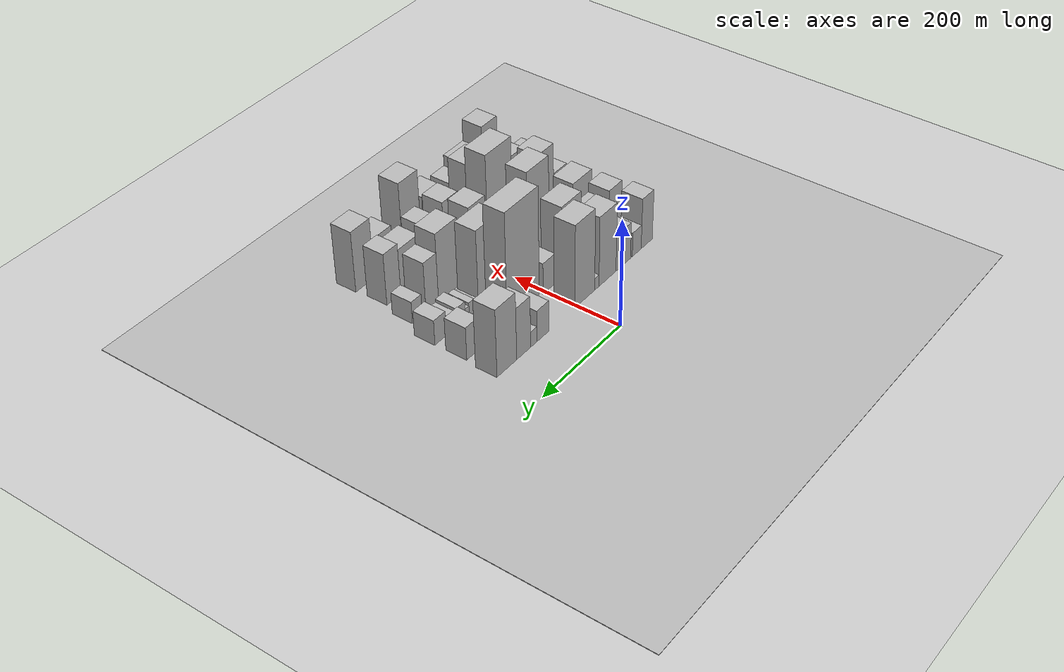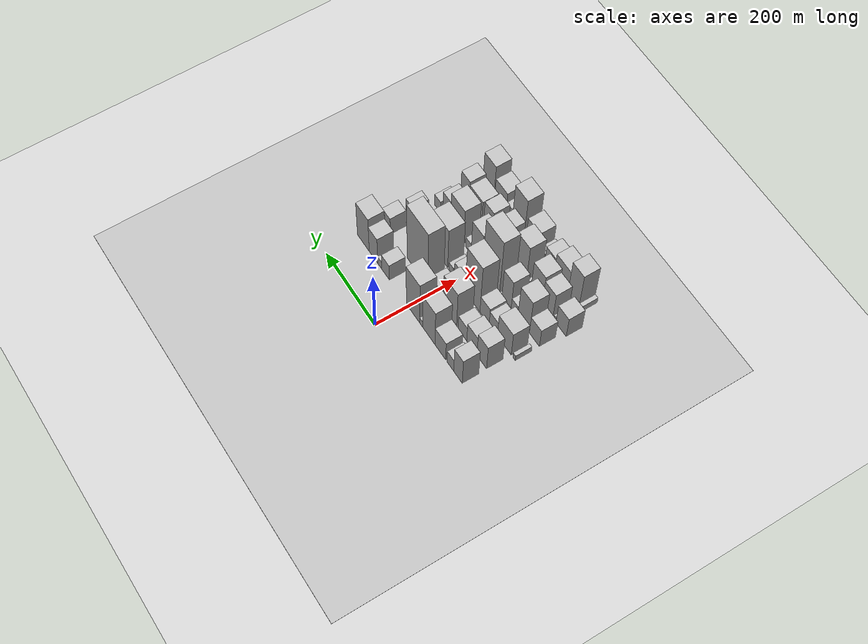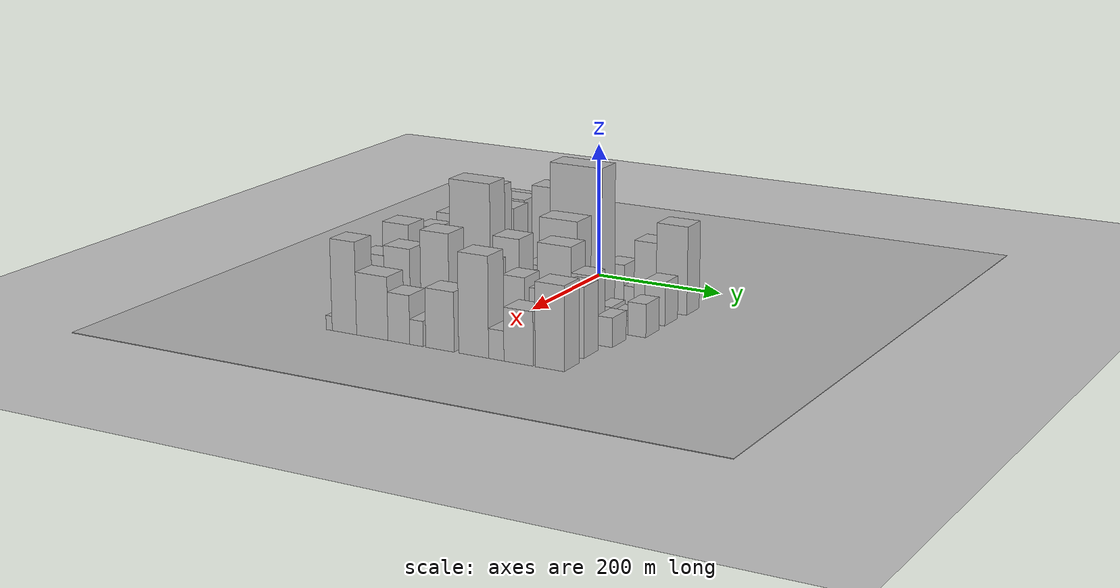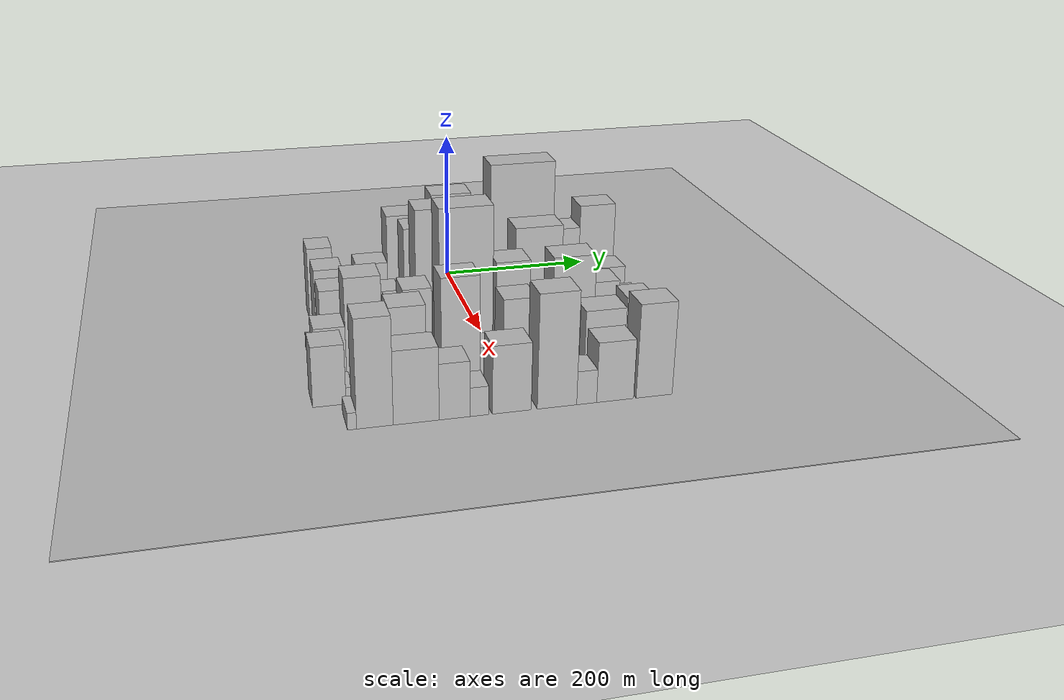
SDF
<sdf version="1.6">
 <world name="default">
  <include><name>ground_plane_1</name><uri>model://HANNAS_ground_plane</uri></include>
  <include>
   <name>ground_plane_2</name>
   <uri>model://HANNAS_ground_plane</uri>
   <pose>100 0 0  0 0 0</pose>
  </include>
  <model name="building_20">
   <static>1</static>
   <pose>100.0000 -193.0922 0 0.000000 0.000000 0.000000</pose>
   <link name="link">
    <pose>0 0 49.50 0 0 0</pose>
    <collision name="collision"><geometry><box><size>40.0000 32.1751 99.0000</size></box></geometry></collision>
    <visual name="visual">
     <cast_shadows>0</cast_shadows>
     <geometry><box><size>40.0000 32.1751 99.0000</size></box></geometry>
     <material>
      <script>
       <uri>model://HANNAS_wall/materials/scripts</uri>
       <uri>model://HANNAS_wall/materials/textures</uri>
       <name>vrc/HANNAS_wall</name>
      </script>
     </material>
    </visual>
   </link>
  </model>
  <model name="building_21">
   <static>1</static>
   <pose>100.0000 -164.2542 0 0.000000 0.000000 0.000000</pose>
   <link name="link">
    <pose>0 0 24.00 0 0 0</pose>
    <collision name="collision"><geometry><box><size>40.0000 25.5011 48.0000</size></box></geometry></collision>
    <visual name="visual">
     <cast_shadows>0</cast_shadows>
     <geometry><box><size>40.0000 25.5011 48.0000</size></box></geometry>
     <material>
      <script>
       <uri>model://HANNAS_wall/materials/scripts</uri>
       <uri>model://HANNAS_wall/materials/textures</uri>
       <name>vrc/HANNAS_wall</name>
      </script>
     </material>
    </visual>
   </link>
  </model>
  <model name="building_22">
   <static>1</static>
   <pose>100.0000 -125.8991 0 0.000000 0.000000 0.000000</pose>
   <link name="link">
    <pose>0 0 36.00 0 0 0</pose>
    <collision name="collision"><geometry><box><size>40.0000 41.2092 72.0000</size></box></geometry></collision>
    <visual name="visual">
     <cast_shadows>0</cast_shadows>
     <geometry><box><size>40.0000 41.2092 72.0000</size></box></geometry>
     <material>
      <script>
       <uri>model://HANNAS_wall/materials/scripts</uri>
       <uri>model://HANNAS_wall/materials/textures</uri>
       <name>vrc/HANNAS_wall</name>
      </script>
     </material>
    </visual>
   </link>
  </model>
  <model name="building_23">
   <static>1</static>
   <pose>100.0000 -81.8025 0 0.000000 0.000000 0.000000</pose>
   <link name="link">
    <pose>0 0 67.50 0 0 0</pose>
    <collision name="collision"><geometry><box><size>40.0000 46.9839 135.0000</size></box></geometry></collision>
    <visual name="visual">
     <cast_shadows>0</cast_shadows>
     <geometry><box><size>40.0000 46.9839 135.0000</size></box></geometry>
     <material>
      <script>
       <uri>model://HANNAS_wall/materials/scripts</uri>
       <uri>model://HANNAS_wall/materials/textures</uri>
       <name>vrc/HANNAS_wall</name>
      </script>
     </material>
    </visual>
   </link>
  </model>
  <model name="building_24">
   <static>1</static>
   <pose>100.0000 -52.4212 0 0.000000 0.000000 0.000000</pose>
   <link name="link">
    <pose>0 0 12.00 0 0 0</pose>
    <collision name="collision"><geometry><box><size>40.0000 11.7787 24.0000</size></box></geometry></collision>
    <visual name="visual">
     <cast_shadows>0</cast_shadows>
     <geometry><box><size>40.0000 11.7787 24.0000</size></box></geometry>
     <material>
      <script>
       <uri>model://HANNAS_wall/materials/scripts</uri>
       <uri>model://HANNAS_wall/materials/textures</uri>
       <name>vrc/HANNAS_wall</name>
      </script>
     </material>
    </visual>
   </link>
  </model>
  <model name="building_25">
   <static>1</static>
   <pose>100.0000 -20.1399 0 0.000000 0.000000 0.000000</pose>
   <link name="link">
    <pose>0 0 79.50 0 0 0</pose>
    <collision name="collision"><geometry><box><size>40.0000 52.7841 159.0000</size></box></geometry></collision>
    <visual name="visual">
     <cast_shadows>0</cast_shadows>
     <geometry><box><size>40.0000 52.7841 159.0000</size></box></geometry>
     <material>
      <script>
       <uri>model://HANNAS_wall/materials/scripts</uri>
       <uri>model://HANNAS_wall/materials/textures</uri>
       <name>vrc/HANNAS_wall</name>
      </script>
     </material>
    </visual>
   </link>
  </model>
  <model name="building_26">
   <static>1</static>
   <pose>100.0000 89.4728 0 0.000000 0.000000 0.000000</pose>
   <link name="link">
    <pose>0 0 30.00 0 0 0</pose>
    <collision name="collision"><geometry><box><size>40.0000 30.8137 60.0000</size></box></geometry></collision>
    <visual name="visual">
     <cast_shadows>0</cast_shadows>
     <geometry><box><size>40.0000 30.8137 60.0000</size></box></geometry>
     <material>
      <script>
       <uri>model://HANNAS_wall/materials/scripts</uri>
       <uri>model://HANNAS_wall/materials/textures</uri>
       <name>vrc/HANNAS_wall</name>
      </script>
     </material>
    </visual>
   </link>
  </model>
  <model name="building_27">
   <static>1</static>
   <pose>100.0000 112.9700 0 0.000000 0.000000 0.000000</pose>
   <link name="link">
    <pose>0 0 15.00 0 0 0</pose>
    <collision name="collision"><geometry><box><size>40.0000 16.1807 30.0000</size></box></geometry></collision>
    <visual name="visual">
     <cast_shadows>0</cast_shadows>
     <geometry><box><size>40.0000 16.1807 30.0000</size></box></geometry>
     <material>
      <script>
       <uri>model://HANNAS_wall/materials/scripts</uri>
       <uri>model://HANNAS_wall/materials/textures</uri>
       <name>vrc/HANNAS_wall</name>
      </script>
     </material>
    </visual>
   </link>
  </model>
  <model name="building_28">
   <static>1</static>
   <pose>100.0000 138.5654 0 0.000000 0.000000 0.000000</pose>
   <link name="link">
    <pose>0 0 49.50 0 0 0</pose>
    <collision name="collision"><geometry><box><size>40.0000 35.0100 99.0000</size></box></geometry></collision>
    <visual name="visual">
     <cast_shadows>0</cast_shadows>
     <geometry><box><size>40.0000 35.0100 99.0000</size></box></geometry>
     <material>
      <script>
       <uri>model://HANNAS_wall/materials/scripts</uri>
       <uri>model://HANNAS_wall/materials/textures</uri>
       <name>vrc/HANNAS_wall</name>
      </script>
     </material>
    </visual>
   </link>
  </model>
  <model name="building_29">
   <static>1</static>
   <pose>100.0000 180.3426 0 0.000000 0.000000 0.000000</pose>
   <link name="link">
    <pose>0 0 64.50 0 0 0</pose>
    <collision name="collision"><geometry><box><size>40.0000 48.5444 129.0000</size></box></geometry></collision>
    <visual name="visual">
     <cast_shadows>0</cast_shadows>
     <geometry><box><size>40.0000 48.5444 129.0000</size></box></geometry>
     <material>
      <script>
       <uri>model://HANNAS_wall/materials/scripts</uri>
       <uri>model://HANNAS_wall/materials/textures</uri>
       <name>vrc/HANNAS_wall</name>
      </script>
     </material>
    </visual>
   </link>
  </model>
  <model name="building_76">
   <static>1</static>
   <pose>160.0000 -189.6237 0 0.000000 0.000000 0.000000</pose>
   <link name="link">
    <pose>0 0 46.50 0 0 0</pose>
    <collision name="collision"><geometry><box><size>40.0000 36.2111 93.0000</size></box></geometry></collision>
    <visual name="visual">
     <cast_shadows>0</cast_shadows>
     <geometry><box><size>40.0000 36.2111 93.0000</size></box></geometry>
     <material>
      <script>
       <uri>model://HANNAS_wall/materials/scripts</uri>
       <uri>model://HANNAS_wall/materials/textures</uri>
       <name>vrc/HANNAS_wall</name>
      </script>
     </material>
    </visual>
   </link>
  </model>
  <model name="building_77">
   <static>1</static>
   <pose>160.0000 -152.2586 0 0.000000 0.000000 0.000000</pose>
   <link name="link">
    <pose>0 0 37.50 0 0 0</pose>
    <collision name="collision"><geometry><box><size>40.0000 38.5190 75.0000</size></box></geometry></collision>
    <visual name="visual">
     <cast_shadows>0</cast_shadows>
     <geometry><box><size>40.0000 38.5190 75.0000</size></box></geometry>
     <material>
      <script>
       <uri>model://HANNAS_wall/materials/scripts</uri>
       <uri>model://HANNAS_wall/materials/textures</uri>
       <name>vrc/HANNAS_wall</name>
      </script>
     </material>
    </visual>
   </link>
  </model>
  <model name="building_78">
   <static>1</static>
   <pose>160.0000 -116.5083 0 0.000000 0.000000 0.000000</pose>
   <link name="link">
    <pose>0 0 28.50 0 0 0</pose>
    <collision name="collision"><geometry><box><size>40.0000 32.9818 57.0000</size></box></geometry></collision>
    <visual name="visual">
     <cast_shadows>0</cast_shadows>
     <geometry><box><size>40.0000 32.9818 57.0000</size></box></geometry>
     <material>
      <script>
       <uri>model://HANNAS_wall/materials/scripts</uri>
       <uri>model://HANNAS_wall/materials/textures</uri>
       <name>vrc/HANNAS_wall</name>
      </script>
     </material>
    </visual>
   </link>
  </model>
  <model name="building_79">
   <static>1</static>
   <pose>160.0000 -67.9803 0 0.000000 0.000000 0.000000</pose>
   <link name="link">
    <pose>0 0 69.00 0 0 0</pose>
    <collision name="collision"><geometry><box><size>40.0000 52.0742 138.0000</size></box></geometry></collision>
    <visual name="visual">
     <cast_shadows>0</cast_shadows>
     <geometry><box><size>40.0000 52.0742 138.0000</size></box></geometry>
     <material>
      <script>
       <uri>model://HANNAS_wall/materials/scripts</uri>
       <uri>model://HANNAS_wall/materials/textures</uri>
       <name>vrc/HANNAS_wall</name>
      </script>
     </material>
    </visual>
   </link>
  </model>
  <model name="building_80">
   <static>1</static>
   <pose>160.0000 -37.9043 0 0.000000 0.000000 0.000000</pose>
   <link name="link">
    <pose>0 0 9.00 0 0 0</pose>
    <collision name="collision"><geometry><box><size>40.0000 8.0777 18.0000</size></box></geometry></collision>
    <visual name="visual">
     <cast_shadows>0</cast_shadows>
     <geometry><box><size>40.0000 8.0777 18.0000</size></box></geometry>
     <material>
      <script>
       <uri>model://HANNAS_wall/materials/scripts</uri>
       <uri>model://HANNAS_wall/materials/textures</uri>
       <name>vrc/HANNAS_wall</name>
      </script>
     </material>
    </visual>
   </link>
  </model>
  <model name="building_81">
   <static>1</static>
   <pose>160.0000 -8.6700 0 0.000000 0.000000 0.000000</pose>
   <link name="link">
    <pose>0 0 30.00 0 0 0</pose>
    <collision name="collision"><geometry><box><size>40.0000 32.3909 60.0000</size></box></geometry></collision>
    <visual name="visual">
     <cast_shadows>0</cast_shadows>
     <geometry><box><size>40.0000 32.3909 60.0000</size></box></geometry>
     <material>
      <script>
       <uri>model://HANNAS_wall/materials/scripts</uri>
       <uri>model://HANNAS_wall/materials/textures</uri>
       <name>vrc/HANNAS_wall</name>
      </script>
     </material>
    </visual>
   </link>
  </model>
  <model name="building_82">
   <static>1</static>
   <pose>160.0000 58.9064 0 0.000000 0.000000 0.000000</pose>
   <link name="link">
    <pose>0 0 106.50 0 0 0</pose>
    <collision name="collision"><geometry><box><size>40.0000 82.7619 213.0000</size></box></geometry></collision>
    <visual name="visual">
     <cast_shadows>0</cast_shadows>
     <geometry><box><size>40.0000 82.7619 213.0000</size></box></geometry>
     <material>
      <script>
       <uri>model://HANNAS_wall/materials/scripts</uri>
       <uri>model://HANNAS_wall/materials/textures</uri>
       <name>vrc/HANNAS_wall</name>
      </script>
     </material>
    </visual>
   </link>
  </model>
  <model name="building_83">
   <static>1</static>
   <pose>160.0000 184.0659 0 0.000000 0.000000 0.000000</pose>
   <link name="link">
    <pose>0 0 31.50 0 0 0</pose>
    <collision name="collision"><geometry><box><size>40.0000 31.8524 63.0000</size></box></geometry></collision>
    <visual name="visual">
     <cast_shadows>0</cast_shadows>
     <geometry><box><size>40.0000 31.8524 63.0000</size></box></geometry>
     <material>
      <script>
       <uri>model://HANNAS_wall/materials/scripts</uri>
       <uri>model://HANNAS_wall/materials/textures</uri>
       <name>vrc/HANNAS_wall</name>
      </script>
     </material>
    </visual>
   </link>
  </model>
  <model name="building_126">
   <static>1</static>
   <pose>220.0000 -218.9489 0 0.000000 0.000000 0.000000</pose>
   <link name="link">
    <pose>0 0 10.50 0 0 0</pose>
    <collision name="collision"><geometry><box><size>40.0000 9.0998 21.0000</size></box></geometry></collision>
    <visual name="visual">
     <cast_shadows>0</cast_shadows>
     <geometry><box><size>40.0000 9.0998 21.0000</size></box></geometry>
     <material>
      <script>
       <uri>model://HANNAS_wall/materials/scripts</uri>
       <uri>model://HANNAS_wall/materials/textures</uri>
       <name>vrc/HANNAS_wall</name>
      </script>
     </material>
    </visual>
   </link>
  </model>
  <model name="building_127">
   <static>1</static>
   <pose>220.0000 -182.5087 0 0.000000 0.000000 0.000000</pose>
   <link name="link">
    <pose>0 0 45.00 0 0 0</pose>
    <collision name="collision"><geometry><box><size>40.0000 51.7806 90.0000</size></box></geometry></collision>
    <visual name="visual">
     <cast_shadows>0</cast_shadows>
     <geometry><box><size>40.0000 51.7806 90.0000</size></box></geometry>
     <material>
      <script>
       <uri>model://HANNAS_wall/materials/scripts</uri>
       <uri>model://HANNAS_wall/materials/textures</uri>
       <name>vrc/HANNAS_wall</name>
      </script>
     </material>
    </visual>
   </link>
  </model>
  <model name="building_128">
   <static>1</static>
   <pose>220.0000 -141.1327 0 0.000000 0.000000 0.000000</pose>
   <link name="link">
    <pose>0 0 28.50 0 0 0</pose>
    <collision name="collision"><geometry><box><size>40.0000 30.9714 57.0000</size></box></geometry></collision>
    <visual name="visual">
     <cast_shadows>0</cast_shadows>
     <geometry><box><size>40.0000 30.9714 57.0000</size></box></geometry>
     <material>
      <script>
       <uri>model://HANNAS_wall/materials/scripts</uri>
       <uri>model://HANNAS_wall/materials/textures</uri>
       <name>vrc/HANNAS_wall</name>
      </script>
     </material>
    </visual>
   </link>
  </model>
  <model name="building_129">
   <static>1</static>
   <pose>220.0000 -108.1437 0 0.000000 0.000000 0.000000</pose>
   <link name="link">
    <pose>0 0 33.00 0 0 0</pose>
    <collision name="collision"><geometry><box><size>40.0000 35.0066 66.0000</size></box></geometry></collision>
    <visual name="visual">
     <cast_shadows>0</cast_shadows>
     <geometry><box><size>40.0000 35.0066 66.0000</size></box></geometry>
     <material>
      <script>
       <uri>model://HANNAS_wall/materials/scripts</uri>
       <uri>model://HANNAS_wall/materials/textures</uri>
       <name>vrc/HANNAS_wall</name>
      </script>
     </material>
    </visual>
   </link>
  </model>
  <model name="building_130">
   <static>1</static>
   <pose>220.0000 -62.1110 0 0.000000 0.000000 0.000000</pose>
   <link name="link">
    <pose>0 0 91.50 0 0 0</pose>
    <collision name="collision"><geometry><box><size>40.0000 57.0589 183.0000</size></box></geometry></collision>
    <visual name="visual">
     <cast_shadows>0</cast_shadows>
     <geometry><box><size>40.0000 57.0589 183.0000</size></box></geometry>
     <material>
      <script>
       <uri>model://HANNAS_wall/materials/scripts</uri>
       <uri>model://HANNAS_wall/materials/textures</uri>
       <name>vrc/HANNAS_wall</name>
      </script>
     </material>
    </visual>
   </link>
  </model>
  <model name="building_131">
   <static>1</static>
   <pose>220.0000 -9.6327 0 0.000000 0.000000 0.000000</pose>
   <link name="link">
    <pose>0 0 30.00 0 0 0</pose>
    <collision name="collision"><geometry><box><size>40.0000 35.8977 60.0000</size></box></geometry></collision>
    <visual name="visual">
     <cast_shadows>0</cast_shadows>
     <geometry><box><size>40.0000 35.8977 60.0000</size></box></geometry>
     <material>
      <script>
       <uri>model://HANNAS_wall/materials/scripts</uri>
       <uri>model://HANNAS_wall/materials/textures</uri>
       <name>vrc/HANNAS_wall</name>
      </script>
     </material>
    </visual>
   </link>
  </model>
  <model name="building_132">
   <static>1</static>
   <pose>220.0000 20.8437 0 0.000000 0.000000 0.000000</pose>
   <link name="link">
    <pose>0 0 15.00 0 0 0</pose>
    <collision name="collision"><geometry><box><size>40.0000 17.0551 30.0000</size></box></geometry></collision>
    <visual name="visual">
     <cast_shadows>0</cast_shadows>
     <geometry><box><size>40.0000 17.0551 30.0000</size></box></geometry>
     <material>
      <script>
       <uri>model://HANNAS_wall/materials/scripts</uri>
       <uri>model://HANNAS_wall/materials/textures</uri>
       <name>vrc/HANNAS_wall</name>
      </script>
     </material>
    </visual>
   </link>
  </model>
  <model name="building_133">
   <static>1</static>
   <pose>220.0000 64.3414 0 0.000000 0.000000 0.000000</pose>
   <link name="link">
    <pose>0 0 75.00 0 0 0</pose>
    <collision name="collision"><geometry><box><size>40.0000 59.9403 150.0000</size></box></geometry></collision>
    <visual name="visual">
     <cast_shadows>0</cast_shadows>
     <geometry><box><size>40.0000 59.9403 150.0000</size></box></geometry>
     <material>
      <script>
       <uri>model://HANNAS_wall/materials/scripts</uri>
       <uri>model://HANNAS_wall/materials/textures</uri>
       <name>vrc/HANNAS_wall</name>
      </script>
     </material>
    </visual>
   </link>
  </model>
  <model name="building_134">
   <static>1</static>
   <pose>220.0000 99.2883 0 0.000000 0.000000 0.000000</pose>
   <link name="link">
    <pose>0 0 10.50 0 0 0</pose>
    <collision name="collision"><geometry><box><size>40.0000 9.9536 21.0000</size></box></geometry></collision>
    <visual name="visual">
     <cast_shadows>0</cast_shadows>
     <geometry><box><size>40.0000 9.9536 21.0000</size></box></geometry>
     <material>
      <script>
       <uri>model://HANNAS_wall/materials/scripts</uri>
       <uri>model://HANNAS_wall/materials/textures</uri>
       <name>vrc/HANNAS_wall</name>
      </script>
     </material>
    </visual>
   </link>
  </model>
  <model name="building_135">
   <static>1</static>
   <pose>220.0000 110.7798 0 0.000000 0.000000 0.000000</pose>
   <link name="link">
    <pose>0 0 13.50 0 0 0</pose>
    <collision name="collision"><geometry><box><size>40.0000 13.0296 27.0000</size></box></geometry></collision>
    <visual name="visual">
     <cast_shadows>0</cast_shadows>
     <geometry><box><size>40.0000 13.0296 27.0000</size></box></geometry>
     <material>
      <script>
       <uri>model://HANNAS_wall/materials/scripts</uri>
       <uri>model://HANNAS_wall/materials/textures</uri>
       <name>vrc/HANNAS_wall</name>
      </script>
     </material>
    </visual>
   </link>
  </model>
  <model name="building_136">
   <static>1</static>
   <pose>220.0000 122.0418 0 0.000000 0.000000 0.000000</pose>
   <link name="link">
    <pose>0 0 10.50 0 0 0</pose>
    <collision name="collision"><geometry><box><size>40.0000 9.4943 21.0000</size></box></geometry></collision>
    <visual name="visual">
     <cast_shadows>0</cast_shadows>
     <geometry><box><size>40.0000 9.4943 21.0000</size></box></geometry>
     <material>
      <script>
       <uri>model://HANNAS_wall/materials/scripts</uri>
       <uri>model://HANNAS_wall/materials/textures</uri>
       <name>vrc/HANNAS_wall</name>
      </script>
     </material>
    </visual>
   </link>
  </model>
  <model name="building_137">
   <static>1</static>
   <pose>220.0000 137.4509 0 0.000000 0.000000 0.000000</pose>
   <link name="link">
    <pose>0 0 18.00 0 0 0</pose>
    <collision name="collision"><geometry><box><size>40.0000 21.3239 36.0000</size></box></geometry></collision>
    <visual name="visual">
     <cast_shadows>0</cast_shadows>
     <geometry><box><size>40.0000 21.3239 36.0000</size></box></geometry>
     <material>
      <script>
       <uri>model://HANNAS_wall/materials/scripts</uri>
       <uri>model://HANNAS_wall/materials/textures</uri>
       <name>vrc/HANNAS_wall</name>
      </script>
     </material>
    </visual>
   </link>
  </model>
  <model name="building_138">
   <static>1</static>
   <pose>220.0000 156.0634 0 0.000000 0.000000 0.000000</pose>
   <link name="link">
    <pose>0 0 15.00 0 0 0</pose>
    <collision name="collision"><geometry><box><size>40.0000 15.9011 30.0000</size></box></geometry></collision>
    <visual name="visual">
     <cast_shadows>0</cast_shadows>
     <geometry><box><size>40.0000 15.9011 30.0000</size></box></geometry>
     <material>
      <script>
       <uri>model://HANNAS_wall/materials/scripts</uri>
       <uri>model://HANNAS_wall/materials/textures</uri>
       <name>vrc/HANNAS_wall</name>
      </script>
     </material>
    </visual>
   </link>
  </model>
  <model name="building_139">
   <static>1</static>
   <pose>220.0000 168.6373 0 0.000000 0.000000 0.000000</pose>
   <link name="link">
    <pose>0 0 10.50 0 0 0</pose>
    <collision name="collision"><geometry><box><size>40.0000 9.2467 21.0000</size></box></geometry></collision>
    <visual name="visual">
     <cast_shadows>0</cast_shadows>
     <geometry><box><size>40.0000 9.2467 21.0000</size></box></geometry>
     <material>
      <script>
       <uri>model://HANNAS_wall/materials/scripts</uri>
       <uri>model://HANNAS_wall/materials/textures</uri>
       <name>vrc/HANNAS_wall</name>
      </script>
     </material>
    </visual>
   </link>
  </model>
  <model name="building_140">
   <static>1</static>
   <pose>220.0000 187.1869 0 0.000000 0.000000 0.000000</pose>
   <link name="link">
    <pose>0 0 24.00 0 0 0</pose>
    <collision name="collision"><geometry><box><size>40.0000 27.8524 48.0000</size></box></geometry></collision>
    <visual name="visual">
     <cast_shadows>0</cast_shadows>
     <geometry><box><size>40.0000 27.8524 48.0000</size></box></geometry>
     <material>
      <script>
       <uri>model://HANNAS_wall/materials/scripts</uri>
       <uri>model://HANNAS_wall/materials/textures</uri>
       <name>vrc/HANNAS_wall</name>
      </script>
     </material>
    </visual>
   </link>
  </model>
  <model name="building_184">
   <static>1</static>
   <pose>280.0000 -204.3341 0 0.000000 0.000000 0.000000</pose>
   <link name="link">
    <pose>0 0 34.50 0 0 0</pose>
    <collision name="collision"><geometry><box><size>40.0000 37.0499 69.0000</size></box></geometry></collision>
    <visual name="visual">
     <cast_shadows>0</cast_shadows>
     <geometry><box><size>40.0000 37.0499 69.0000</size></box></geometry>
     <material>
      <script>
       <uri>model://HANNAS_wall/materials/scripts</uri>
       <uri>model://HANNAS_wall/materials/textures</uri>
       <name>vrc/HANNAS_wall</name>
      </script>
     </material>
    </visual>
   </link>
  </model>
  <model name="building_185">
   <static>1</static>
   <pose>280.0000 -164.2214 0 0.000000 0.000000 0.000000</pose>
   <link name="link">
    <pose>0 0 64.50 0 0 0</pose>
    <collision name="collision"><geometry><box><size>40.0000 43.1754 129.0000</size></box></geometry></collision>
    <visual name="visual">
     <cast_shadows>0</cast_shadows>
     <geometry><box><size>40.0000 43.1754 129.0000</size></box></geometry>
     <material>
      <script>
       <uri>model://HANNAS_wall/materials/scripts</uri>
       <uri>model://HANNAS_wall/materials/textures</uri>
       <name>vrc/HANNAS_wall</name>
      </script>
     </material>
    </visual>
   </link>
  </model>
  <model name="building_186">
   <static>1</static>
   <pose>280.0000 -130.1637 0 0.000000 0.000000 0.000000</pose>
   <link name="link">
    <pose>0 0 21.00 0 0 0</pose>
    <collision name="collision"><geometry><box><size>40.0000 24.9401 42.0000</size></box></geometry></collision>
    <visual name="visual">
     <cast_shadows>0</cast_shadows>
     <geometry><box><size>40.0000 24.9401 42.0000</size></box></geometry>
     <material>
      <script>
       <uri>model://HANNAS_wall/materials/scripts</uri>
       <uri>model://HANNAS_wall/materials/textures</uri>
       <name>vrc/HANNAS_wall</name>
      </script>
     </material>
    </visual>
   </link>
  </model>
  <model name="building_187">
   <static>1</static>
   <pose>280.0000 -100.3181 0 0.000000 0.000000 0.000000</pose>
   <link name="link">
    <pose>0 0 54.00 0 0 0</pose>
    <collision name="collision"><geometry><box><size>40.0000 34.7510 108.0000</size></box></geometry></collision>
    <visual name="visual">
     <cast_shadows>0</cast_shadows>
     <geometry><box><size>40.0000 34.7510 108.0000</size></box></geometry>
     <material>
      <script>
       <uri>model://HANNAS_wall/materials/scripts</uri>
       <uri>model://HANNAS_wall/materials/textures</uri>
       <name>vrc/HANNAS_wall</name>
      </script>
     </material>
    </visual>
   </link>
  </model>
  <model name="building_188">
   <static>1</static>
   <pose>280.0000 -41.5437 0 0.000000 0.000000 0.000000</pose>
   <link name="link">
    <pose>0 0 102.00 0 0 0</pose>
    <collision name="collision"><geometry><box><size>40.0000 64.7978 204.0000</size></box></geometry></collision>
    <visual name="visual">
     <cast_shadows>0</cast_shadows>
     <geometry><box><size>40.0000 64.7978 204.0000</size></box></geometry>
     <material>
      <script>
       <uri>model://HANNAS_wall/materials/scripts</uri>
       <uri>model://HANNAS_wall/materials/textures</uri>
       <name>vrc/HANNAS_wall</name>
      </script>
     </material>
    </visual>
   </link>
  </model>
  <model name="building_189">
   <static>1</static>
   <pose>280.0000 15.6503 0 0.000000 0.000000 0.000000</pose>
   <link name="link">
    <pose>0 0 66.00 0 0 0</pose>
    <collision name="collision"><geometry><box><size>40.0000 41.5903 132.0000</size></box></geometry></collision>
    <visual name="visual">
     <cast_shadows>0</cast_shadows>
     <geometry><box><size>40.0000 41.5903 132.0000</size></box></geometry>
     <material>
      <script>
       <uri>model://HANNAS_wall/materials/scripts</uri>
       <uri>model://HANNAS_wall/materials/textures</uri>
       <name>vrc/HANNAS_wall</name>
      </script>
     </material>
    </visual>
   </link>
  </model>
  <model name="building_190">
   <static>1</static>
   <pose>280.0000 46.8813 0 0.000000 0.000000 0.000000</pose>
   <link name="link">
    <pose>0 0 19.50 0 0 0</pose>
    <collision name="collision"><geometry><box><size>40.0000 20.8716 39.0000</size></box></geometry></collision>
    <visual name="visual">
     <cast_shadows>0</cast_shadows>
     <geometry><box><size>40.0000 20.8716 39.0000</size></box></geometry>
     <material>
      <script>
       <uri>model://HANNAS_wall/materials/scripts</uri>
       <uri>model://HANNAS_wall/materials/textures</uri>
       <name>vrc/HANNAS_wall</name>
      </script>
     </material>
    </visual>
   </link>
  </model>
  <model name="building_191">
   <static>1</static>
   <pose>280.0000 91.4807 0 0.000000 0.000000 0.000000</pose>
   <link name="link">
    <pose>0 0 66.00 0 0 0</pose>
    <collision name="collision"><geometry><box><size>40.0000 52.3272 132.0000</size></box></geometry></collision>
    <visual name="visual">
     <cast_shadows>0</cast_shadows>
     <geometry><box><size>40.0000 52.3272 132.0000</size></box></geometry>
     <material>
      <script>
       <uri>model://HANNAS_wall/materials/scripts</uri>
       <uri>model://HANNAS_wall/materials/textures</uri>
       <name>vrc/HANNAS_wall</name>
      </script>
     </material>
    </visual>
   </link>
  </model>
  <model name="building_192">
   <static>1</static>
   <pose>280.0000 133.1042 0 0.000000 0.000000 0.000000</pose>
   <link name="link">
    <pose>0 0 48.00 0 0 0</pose>
    <collision name="collision"><geometry><box><size>40.0000 30.9200 96.0000</size></box></geometry></collision>
    <visual name="visual">
     <cast_shadows>0</cast_shadows>
     <geometry><box><size>40.0000 30.9200 96.0000</size></box></geometry>
     <material>
      <script>
       <uri>model://HANNAS_wall/materials/scripts</uri>
       <uri>model://HANNAS_wall/materials/textures</uri>
       <name>vrc/HANNAS_wall</name>
      </script>
     </material>
    </visual>
   </link>
  </model>
  <model name="building_193">
   <static>1</static>
   <pose>280.0000 169.4242 0 0.000000 0.000000 0.000000</pose>
   <link name="link">
    <pose>0 0 21.00 0 0 0</pose>
    <collision name="collision"><geometry><box><size>40.0000 23.7199 42.0000</size></box></geometry></collision>
    <visual name="visual">
     <cast_shadows>0</cast_shadows>
     <geometry><box><size>40.0000 23.7199 42.0000</size></box></geometry>
     <material>
      <script>
       <uri>model://HANNAS_wall/materials/scripts</uri>
       <uri>model://HANNAS_wall/materials/textures</uri>
       <name>vrc/HANNAS_wall</name>
      </script>
     </material>
    </visual>
   </link>
  </model>
  <model name="building_237">
   <static>1</static>
   <pose>340.0000 -214.0843 0 0.000000 0.000000 0.000000</pose>
   <link name="link">
    <pose>0 0 37.50 0 0 0</pose>
    <collision name="collision"><geometry><box><size>40.0000 37.8861 75.0000</size></box></geometry></collision>
    <visual name="visual">
     <cast_shadows>0</cast_shadows>
     <geometry><box><size>40.0000 37.8861 75.0000</size></box></geometry>
     <material>
      <script>
       <uri>model://HANNAS_wall/materials/scripts</uri>
       <uri>model://HANNAS_wall/materials/textures</uri>
       <name>vrc/HANNAS_wall</name>
      </script>
     </material>
    </visual>
   </link>
  </model>
  <model name="building_238">
   <static>1</static>
   <pose>340.0000 -190.9355 0 0.000000 0.000000 0.000000</pose>
   <link name="link">
    <pose>0 0 10.50 0 0 0</pose>
    <collision name="collision"><geometry><box><size>40.0000 8.4115 21.0000</size></box></geometry></collision>
    <visual name="visual">
     <cast_shadows>0</cast_shadows>
     <geometry><box><size>40.0000 8.4115 21.0000</size></box></geometry>
     <material>
      <script>
       <uri>model://HANNAS_wall/materials/scripts</uri>
       <uri>model://HANNAS_wall/materials/textures</uri>
       <name>vrc/HANNAS_wall</name>
      </script>
     </material>
    </visual>
   </link>
  </model>
  <model name="building_239">
   <static>1</static>
   <pose>340.0000 -164.1803 0 0.000000 0.000000 0.000000</pose>
   <link name="link">
    <pose>0 0 49.50 0 0 0</pose>
    <collision name="collision"><geometry><box><size>40.0000 39.0988 99.0000</size></box></geometry></collision>
    <visual name="visual">
     <cast_shadows>0</cast_shadows>
     <geometry><box><size>40.0000 39.0988 99.0000</size></box></geometry>
     <material>
      <script>
       <uri>model://HANNAS_wall/materials/scripts</uri>
       <uri>model://HANNAS_wall/materials/textures</uri>
       <name>vrc/HANNAS_wall</name>
      </script>
     </material>
    </visual>
   </link>
  </model>
  <model name="building_240">
   <static>1</static>
   <pose>340.0000 -123.3323 0 0.000000 0.000000 0.000000</pose>
   <link name="link">
    <pose>0 0 57.00 0 0 0</pose>
    <collision name="collision"><geometry><box><size>40.0000 42.5971 114.0000</size></box></geometry></collision>
    <visual name="visual">
     <cast_shadows>0</cast_shadows>
     <geometry><box><size>40.0000 42.5971 114.0000</size></box></geometry>
     <material>
      <script>
       <uri>model://HANNAS_wall/materials/scripts</uri>
       <uri>model://HANNAS_wall/materials/textures</uri>
       <name>vrc/HANNAS_wall</name>
      </script>
     </material>
    </visual>
   </link>
  </model>
  <model name="building_241">
   <static>1</static>
   <pose>340.0000 -88.2885 0 0.000000 0.000000 0.000000</pose>
   <link name="link">
    <pose>0 0 7.50 0 0 0</pose>
    <collision name="collision"><geometry><box><size>40.0000 7.4905 15.0000</size></box></geometry></collision>
    <visual name="visual">
     <cast_shadows>0</cast_shadows>
     <geometry><box><size>40.0000 7.4905 15.0000</size></box></geometry>
     <material>
      <script>
       <uri>model://HANNAS_wall/materials/scripts</uri>
       <uri>model://HANNAS_wall/materials/textures</uri>
       <name>vrc/HANNAS_wall</name>
      </script>
     </material>
    </visual>
   </link>
  </model>
  <model name="building_242">
   <static>1</static>
   <pose>340.0000 -61.8837 0 0.000000 0.000000 0.000000</pose>
   <link name="link">
    <pose>0 0 72.00 0 0 0</pose>
    <collision name="collision"><geometry><box><size>40.0000 45.3193 144.0000</size></box></geometry></collision>
    <visual name="visual">
     <cast_shadows>0</cast_shadows>
     <geometry><box><size>40.0000 45.3193 144.0000</size></box></geometry>
     <material>
      <script>
       <uri>model://HANNAS_wall/materials/scripts</uri>
       <uri>model://HANNAS_wall/materials/textures</uri>
       <name>vrc/HANNAS_wall</name>
      </script>
     </material>
    </visual>
   </link>
  </model>
  <model name="building_243">
   <static>1</static>
   <pose>340.0000 -25.4821 0 0.000000 0.000000 0.000000</pose>
   <link name="link">
    <pose>0 0 27.00 0 0 0</pose>
    <collision name="collision"><geometry><box><size>40.0000 27.4839 54.0000</size></box></geometry></collision>
    <visual name="visual">
     <cast_shadows>0</cast_shadows>
     <geometry><box><size>40.0000 27.4839 54.0000</size></box></geometry>
     <material>
      <script>
       <uri>model://HANNAS_wall/materials/scripts</uri>
       <uri>model://HANNAS_wall/materials/textures</uri>
       <name>vrc/HANNAS_wall</name>
      </script>
     </material>
    </visual>
   </link>
  </model>
  <model name="building_244">
   <static>1</static>
   <pose>340.0000 7.6640 0 0.000000 0.000000 0.000000</pose>
   <link name="link">
    <pose>0 0 55.50 0 0 0</pose>
    <collision name="collision"><geometry><box><size>40.0000 38.8083 111.0000</size></box></geometry></collision>
    <visual name="visual">
     <cast_shadows>0</cast_shadows>
     <geometry><box><size>40.0000 38.8083 111.0000</size></box></geometry>
     <material>
      <script>
       <uri>model://HANNAS_wall/materials/scripts</uri>
       <uri>model://HANNAS_wall/materials/textures</uri>
       <name>vrc/HANNAS_wall</name>
      </script>
     </material>
    </visual>
   </link>
  </model>
  <model name="building_245">
   <static>1</static>
   <pose>340.0000 36.2958 0 0.000000 0.000000 0.000000</pose>
   <link name="link">
    <pose>0 0 16.50 0 0 0</pose>
    <collision name="collision"><geometry><box><size>40.0000 18.4554 33.0000</size></box></geometry></collision>
    <visual name="visual">
     <cast_shadows>0</cast_shadows>
     <geometry><box><size>40.0000 18.4554 33.0000</size></box></geometry>
     <material>
      <script>
       <uri>model://HANNAS_wall/materials/scripts</uri>
       <uri>model://HANNAS_wall/materials/textures</uri>
       <name>vrc/HANNAS_wall</name>
      </script>
     </material>
    </visual>
   </link>
  </model>
  <model name="building_246">
   <static>1</static>
   <pose>340.0000 62.7596 0 0.000000 0.000000 0.000000</pose>
   <link name="link">
    <pose>0 0 49.50 0 0 0</pose>
    <collision name="collision"><geometry><box><size>40.0000 34.4721 99.0000</size></box></geometry></collision>
    <visual name="visual">
     <cast_shadows>0</cast_shadows>
     <geometry><box><size>40.0000 34.4721 99.0000</size></box></geometry>
     <material>
      <script>
       <uri>model://HANNAS_wall/materials/scripts</uri>
       <uri>model://HANNAS_wall/materials/textures</uri>
       <name>vrc/HANNAS_wall</name>
      </script>
     </material>
    </visual>
   </link>
  </model>
  <model name="building_247">
   <static>1</static>
   <pose>340.0000 111.8329 0 0.000000 0.000000 0.000000</pose>
   <link name="link">
    <pose>0 0 43.50 0 0 0</pose>
    <collision name="collision"><geometry><box><size>40.0000 49.6746 87.0000</size></box></geometry></collision>
    <visual name="visual">
     <cast_shadows>0</cast_shadows>
     <geometry><box><size>40.0000 49.6746 87.0000</size></box></geometry>
     <material>
      <script>
       <uri>model://HANNAS_wall/materials/scripts</uri>
       <uri>model://HANNAS_wall/materials/textures</uri>
       <name>vrc/HANNAS_wall</name>
      </script>
     </material>
    </visual>
   </link>
  </model>
  <model name="building_248">
   <static>1</static>
   <pose>340.0000 153.4604 0 0.000000 0.000000 0.000000</pose>
   <link name="link">
    <pose>0 0 49.50 0 0 0</pose>
    <collision name="collision"><geometry><box><size>40.0000 33.5804 99.0000</size></box></geometry></collision>
    <visual name="visual">
     <cast_shadows>0</cast_shadows>
     <geometry><box><size>40.0000 33.5804 99.0000</size></box></geometry>
     <material>
      <script>
       <uri>model://HANNAS_wall/materials/scripts</uri>
       <uri>model://HANNAS_wall/materials/textures</uri>
       <name>vrc/HANNAS_wall</name>
      </script>
     </material>
    </visual>
   </link>
  </model>
  <model name="building_296">
   <static>1</static>
   <pose>400.0000 -196.9328 0 0.000000 0.000000 0.000000</pose>
   <link name="link">
    <pose>0 0 10.50 0 0 0</pose>
    <collision name="collision"><geometry><box><size>40.0000 10.0161 21.0000</size></box></geometry></collision>
    <visual name="visual">
     <cast_shadows>0</cast_shadows>
     <geometry><box><size>40.0000 10.0161 21.0000</size></box></geometry>
     <material>
      <script>
       <uri>model://HANNAS_wall/materials/scripts</uri>
       <uri>model://HANNAS_wall/materials/textures</uri>
       <name>vrc/HANNAS_wall</name>
      </script>
     </material>
    </visual>
   </link>
  </model>
  <model name="building_297">
   <static>1</static>
   <pose>400.0000 -171.6917 0 0.000000 0.000000 0.000000</pose>
   <link name="link">
    <pose>0 0 66.00 0 0 0</pose>
    <collision name="collision"><geometry><box><size>40.0000 40.4662 132.0000</size></box></geometry></collision>
    <visual name="visual">
     <cast_shadows>0</cast_shadows>
     <geometry><box><size>40.0000 40.4662 132.0000</size></box></geometry>
     <material>
      <script>
       <uri>model://HANNAS_wall/materials/scripts</uri>
       <uri>model://HANNAS_wall/materials/textures</uri>
       <name>vrc/HANNAS_wall</name>
      </script>
     </material>
    </visual>
   </link>
  </model>
  <model name="building_298">
   <static>1</static>
   <pose>400.0000 -125.7822 0 0.000000 0.000000 0.000000</pose>
   <link name="link">
    <pose>0 0 45.00 0 0 0</pose>
    <collision name="collision"><geometry><box><size>40.0000 51.3527 90.0000</size></box></geometry></collision>
    <visual name="visual">
     <cast_shadows>0</cast_shadows>
     <geometry><box><size>40.0000 51.3527 90.0000</size></box></geometry>
     <material>
      <script>
       <uri>model://HANNAS_wall/materials/scripts</uri>
       <uri>model://HANNAS_wall/materials/textures</uri>
       <name>vrc/HANNAS_wall</name>
      </script>
     </material>
    </visual>
   </link>
  </model>
  <model name="building_299">
   <static>1</static>
   <pose>400.0000 -82.5496 0 0.000000 0.000000 0.000000</pose>
   <link name="link">
    <pose>0 0 34.50 0 0 0</pose>
    <collision name="collision"><geometry><box><size>40.0000 35.1126 69.0000</size></box></geometry></collision>
    <visual name="visual">
     <cast_shadows>0</cast_shadows>
     <geometry><box><size>40.0000 35.1126 69.0000</size></box></geometry>
     <material>
      <script>
       <uri>model://HANNAS_wall/materials/scripts</uri>
       <uri>model://HANNAS_wall/materials/textures</uri>
       <name>vrc/HANNAS_wall</name>
      </script>
     </material>
    </visual>
   </link>
  </model>
  <model name="building_300">
   <static>1</static>
   <pose>400.0000 -54.2247 0 0.000000 0.000000 0.000000</pose>
   <link name="link">
    <pose>0 0 18.00 0 0 0</pose>
    <collision name="collision"><geometry><box><size>40.0000 21.5371 36.0000</size></box></geometry></collision>
    <visual name="visual">
     <cast_shadows>0</cast_shadows>
     <geometry><box><size>40.0000 21.5371 36.0000</size></box></geometry>
     <material>
      <script>
       <uri>model://HANNAS_wall/materials/scripts</uri>
       <uri>model://HANNAS_wall/materials/textures</uri>
       <name>vrc/HANNAS_wall</name>
      </script>
     </material>
    </visual>
   </link>
  </model>
  <model name="building_301">
   <static>1</static>
   <pose>400.0000 -16.9130 0 0.000000 0.000000 0.000000</pose>
   <link name="link">
    <pose>0 0 42.00 0 0 0</pose>
    <collision name="collision"><geometry><box><size>40.0000 45.0862 84.0000</size></box></geometry></collision>
    <visual name="visual">
     <cast_shadows>0</cast_shadows>
     <geometry><box><size>40.0000 45.0862 84.0000</size></box></geometry>
     <material>
      <script>
       <uri>model://HANNAS_wall/materials/scripts</uri>
       <uri>model://HANNAS_wall/materials/textures</uri>
       <name>vrc/HANNAS_wall</name>
      </script>
     </material>
    </visual>
   </link>
  </model>
  <model name="building_302">
   <static>1</static>
   <pose>400.0000 35.8201 0 0.000000 0.000000 0.000000</pose>
   <link name="link">
    <pose>0 0 70.50 0 0 0</pose>
    <collision name="collision"><geometry><box><size>40.0000 46.3801 141.0000</size></box></geometry></collision>
    <visual name="visual">
     <cast_shadows>0</cast_shadows>
     <geometry><box><size>40.0000 46.3801 141.0000</size></box></geometry>
     <material>
      <script>
       <uri>model://HANNAS_wall/materials/scripts</uri>
       <uri>model://HANNAS_wall/materials/textures</uri>
       <name>vrc/HANNAS_wall</name>
      </script>
     </material>
    </visual>
   </link>
  </model>
  <model name="building_303">
   <static>1</static>
   <pose>400.0000 70.8305 0 0.000000 0.000000 0.000000</pose>
   <link name="link">
    <pose>0 0 21.00 0 0 0</pose>
    <collision name="collision"><geometry><box><size>40.0000 23.6406 42.0000</size></box></geometry></collision>
    <visual name="visual">
     <cast_shadows>0</cast_shadows>
     <geometry><box><size>40.0000 23.6406 42.0000</size></box></geometry>
     <material>
      <script>
       <uri>model://HANNAS_wall/materials/scripts</uri>
       <uri>model://HANNAS_wall/materials/textures</uri>
       <name>vrc/HANNAS_wall</name>
      </script>
     </material>
    </visual>
   </link>
  </model>
  <model name="building_304">
   <static>1</static>
   <pose>400.0000 104.8610 0 0.000000 0.000000 0.000000</pose>
   <link name="link">
    <pose>0 0 37.50 0 0 0</pose>
    <collision name="collision"><geometry><box><size>40.0000 44.4204 75.0000</size></box></geometry></collision>
    <visual name="visual">
     <cast_shadows>0</cast_shadows>
     <geometry><box><size>40.0000 44.4204 75.0000</size></box></geometry>
     <material>
      <script>
       <uri>model://HANNAS_wall/materials/scripts</uri>
       <uri>model://HANNAS_wall/materials/textures</uri>
       <name>vrc/HANNAS_wall</name>
      </script>
     </material>
    </visual>
   </link>
  </model>
  <model name="building_305">
   <static>1</static>
   <pose>400.0000 151.9783 0 0.000000 0.000000 0.000000</pose>
   <link name="link">
    <pose>0 0 58.50 0 0 0</pose>
    <collision name="collision"><geometry><box><size>40.0000 43.8142 117.0000</size></box></geometry></collision>
    <visual name="visual">
     <cast_shadows>0</cast_shadows>
     <geometry><box><size>40.0000 43.8142 117.0000</size></box></geometry>
     <material>
      <script>
       <uri>model://HANNAS_wall/materials/scripts</uri>
       <uri>model://HANNAS_wall/materials/textures</uri>
       <name>vrc/HANNAS_wall</name>
      </script>
     </material>
    </visual>
   </link>
  </model>
 </world>
</sdf>
